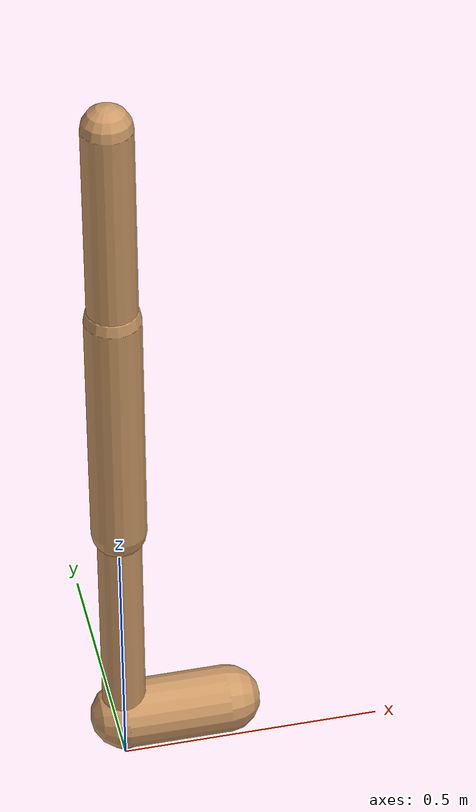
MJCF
<mujoco model="walker2d">
  <compiler angle="degree" coordinate="global" inertiafromgeom="true" />
  <default>
    <joint armature="0.01" damping=".1" limited="true" />
    <geom conaffinity="0" condim="3" contype="1" density="1000" friction="0.8 .1 .1" rgba="0.8 0.6 .4 1" />
  </default>
  <option integrator="RK4" timestep="0.002" />
  <worldbody>

    <body name="torso" pos="0 0 0.0673902165671883">
      <joint armature="0" axis="1 0 0" damping="0" limited="false" name="ignorex" pos="0 0 0" stiffness="0" type="slide" />
      <joint armature="0" axis="0 0 1" damping="0" limited="false" name="ignorez" pos="0 0 0" ref="1.25" stiffness="0" type="slide" />
      <joint armature="0" axis="0 1 0" damping="0" limited="false" name="ignorey" pos="0 0 0" stiffness="0" type="hinge" />
      <geom fromto="0 0 1.45 0 0 1.05" name="torso_geom" size="0.046570958057827766" type="capsule" />
      <body name="thigh">
        <joint axis="0 -1 0" name="thigh_joint" pos="0 0 1.05" range="-150 0" type="hinge" />
        <geom fromto="0.0 0.0 1.05 0.0 0.0 0.5680783184681739" name="thigh_geom" size="0.052326051134742035" type="capsule" />
        <body name="leg" pos="0.0 0.0 -0.03192168153182606">
          <joint axis="0 -1 0" name="leg_joint" pos="0 0 0.6" range="-150 0" type="hinge" />
          <geom fromto="0.0 0.0 0.6 0.0 0.0 0.06453146496463774" name="leg_geom" size="0.04186084090779363" type="capsule" />
          <body name="foot" pos="0.0 0.0 -0.035468535035362264">
            <joint axis="0 -1 0" name="foot_joint" pos="0 0 0.1" range="-45 45" type="hinge" />
            <geom fromto="0.0 0.0 0.1 0.19983289369939392 0.0 0.1" name="foot_geom" size="0.06581910495635337" type="capsule" />
          </body>
        </body>
      </body>

      <body name="thigh_left">
        <joint axis="0 -1 0" name="thigh_left_joint" pos="0 0 1.05" range="-150 0" type="hinge" />
        <geom fromto="0.0 0.0 1.05 0.0 0.0 0.5680783184681739" name="thigh_left_geom" rgba=".7 .3 .6 1" size="0.052326051134742035" type="capsule" />
        <body name="leg_left" pos="0.0 0.0 -0.03192168153182606">
          <joint axis="0 -1 0" name="leg_left_joint" pos="0 0 0.6" range="-150 0" type="hinge" />
          <geom fromto="0.0 0.0 0.6 0.0 0.0 0.06453146496463774" name="leg_left_geom" rgba=".7 .3 .6 1" size="0.04186084090779363" type="capsule" />
          <body name="foot_left" pos="0.0 0.0 -0.035468535035362264">
            <joint axis="0 -1 0" name="foot_left_joint" pos="0 0 0.1" range="-45 45" type="hinge" />
            <geom fromto="0.0 0.0 0.1 0.19983289369939392 0.0 0.1" name="foot_left_geom" rgba=".7 .3 .6 1" size="0.06581910495635337" type="capsule" />
          </body>
        </body>
      </body>
    </body>
  </worldbody>
  <actuator>

    <motor ctrllimited="true" ctrlrange="-1.0 1.0" gear="100" joint="thigh_joint" />
    <motor ctrllimited="true" ctrlrange="-1.0 1.0" gear="100" joint="leg_joint" />
    <motor ctrllimited="true" ctrlrange="-1.0 1.0" gear="100" joint="foot_joint" />
    <motor ctrllimited="true" ctrlrange="-1.0 1.0" gear="100" joint="thigh_left_joint" />
    <motor ctrllimited="true" ctrlrange="-1.0 1.0" gear="100" joint="leg_left_joint" />
    <motor ctrllimited="true" ctrlrange="-1.0 1.0" gear="100" joint="foot_left_joint" />

  </actuator>
</mujoco>
